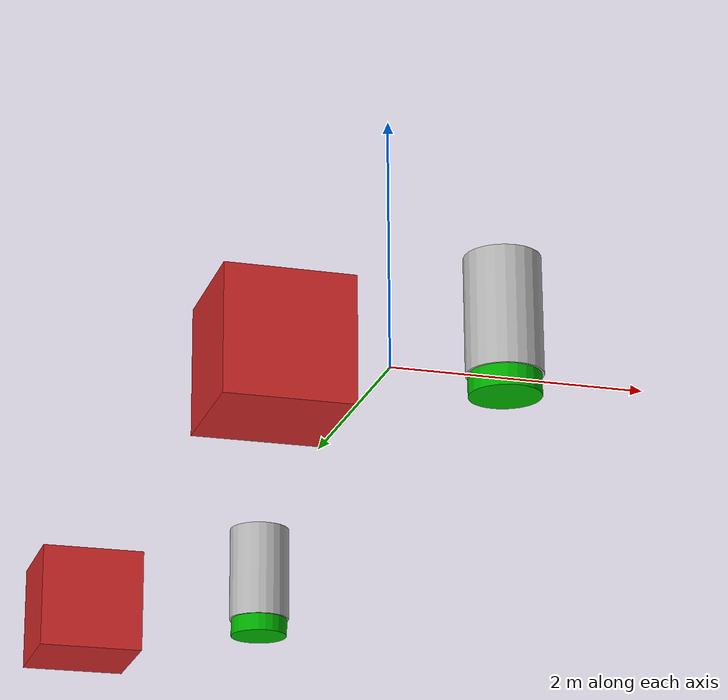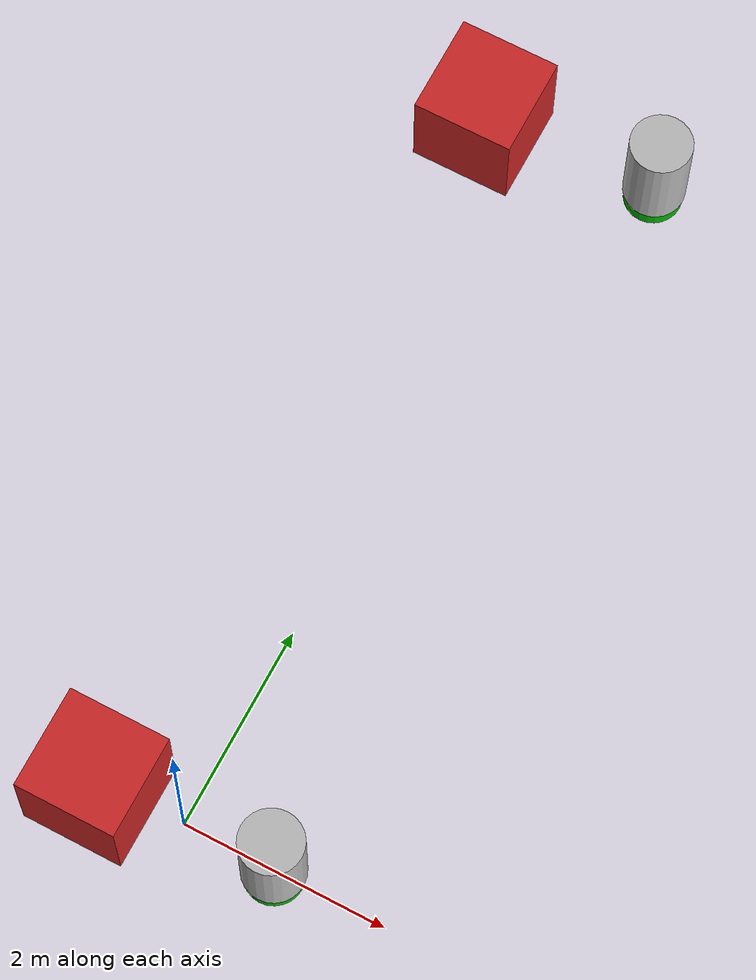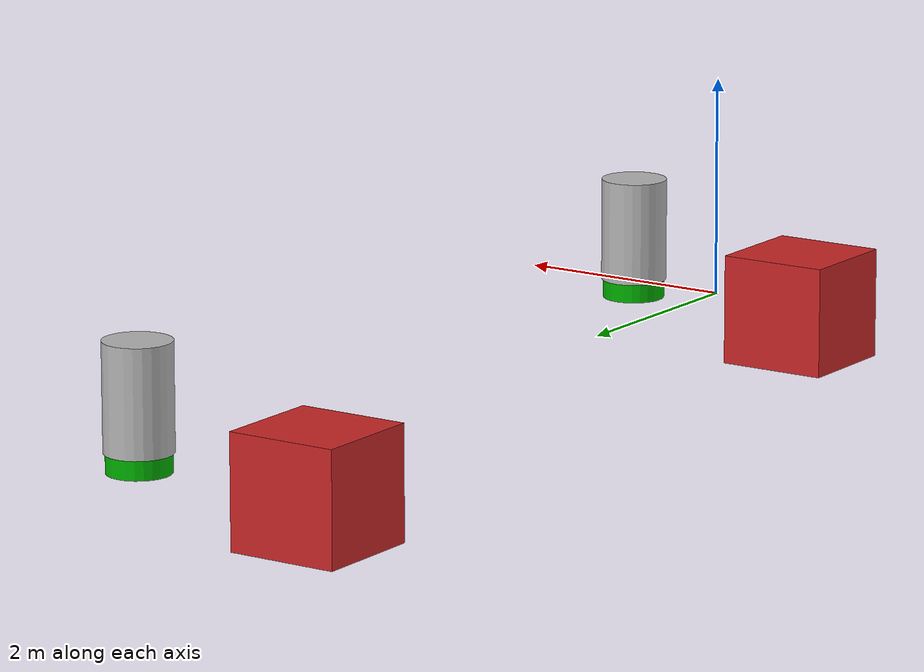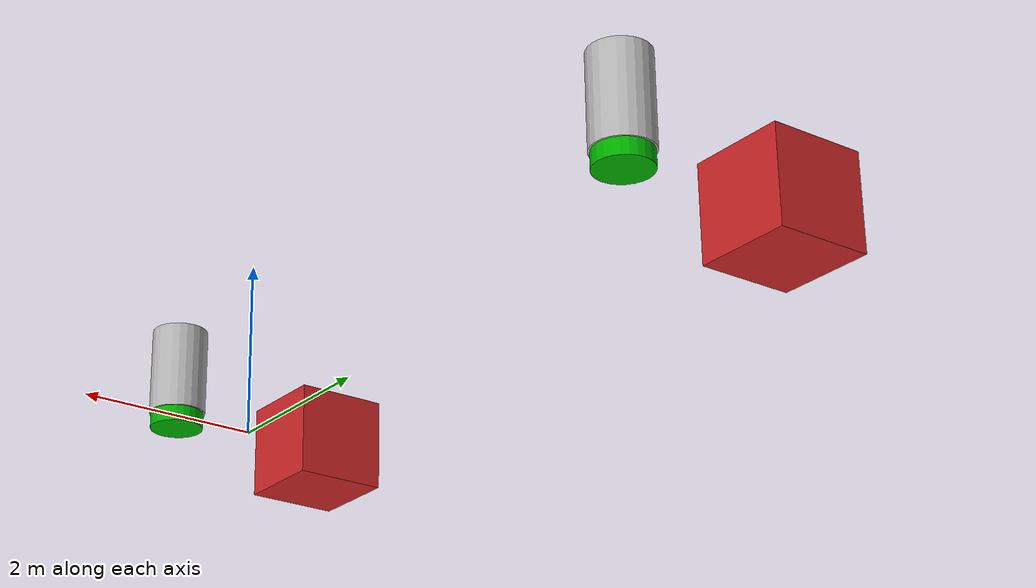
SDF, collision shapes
<?xml version='1.0'?>
<sdf version='1.6'>
  <model name='task1_var1'>
    <include>
      <uri>model://marker_buoy_port</uri>
      <pose>-0.9 0 0 0 0 0</pose>
      <name>Port Marker Buoy (red) #1</name>
    </include>
    <include>
      <uri>model://marker_buoy_starboard</uri>
      <pose>0.9 0 0 0 0 0</pose>
      <name>Starboard Marker Buoy (green) #1</name>
    </include>
    <include>
      <uri>model://marker_buoy_port</uri>
      <pose>-0.9 7.5 0 0 0 0</pose>
      <name>Port Marker Buoy (red) #2</name>
    </include>
    <include>
      <uri>model://marker_buoy_starboard</uri>
      <pose>0.9 7.5 0 0 0 0</pose>
      <name>Starboard Marker Buoy (green) #2</name>
    </include>
  </model>
</sdf>

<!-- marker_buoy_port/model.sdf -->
<sdf version="1.6">
  <model name="Red Marker">
    <static>true</static>
    <link name="robot_link">
      <collision name="body_collision">
        <geometry>
          <box>
            <size>1 1 1</size>
          </box>
        </geometry>
      </collision>
      <visual name="wheel1_visual">
        <pose>0 0 -0.1 1.57 0 0</pose>
        <geometry>
          <mesh>
            <uri>model://marker_buoy_port/meshes/sur-Mark_marker.stl</uri>
            <scale>0.001 0.001 0.001</scale>
          </mesh>
        </geometry>
        <material>
          <script>
              <uri>file://media/materials/scripts/gazebo.material</uri>
              <name>Gazebo/Red</name>
          </script>
        </material>
      </visual>
    </link>
  </model>
</sdf>

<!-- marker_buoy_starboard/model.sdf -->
<sdf version='1.6'>
  <model name='Starboard Marker Buoy (green)'>
    <link name='cylinder'>
      <inertial>
        <mass>0.068793</mass>
        <inertia>
          <ixx>0.00543853</ixx>
          <ixy>0</ixy>
          <ixz>0</ixz>
          <iyy>0.00543853</iyy>
          <iyz>0</iyz>
          <izz>0.0006256</izz>
        </inertia>
        <pose>0 0 0 0 -0 0</pose>
      </inertial>
      <pose>0 0 0.496472 0 -0 0</pose>
      <gravity>1</gravity>
      <self_collide>0</self_collide>
      <kinematic>0</kinematic>
      <enable_wind>0</enable_wind>
      <collision name='collision'>
        <laser_retro>0</laser_retro>
        <max_contacts>10</max_contacts>
        <pose>0 0 0 0 -0 0</pose>
        <geometry>
          <cylinder>
            <radius>0.3</radius>
            <length>0.945576</length>
          </cylinder>
        </geometry>
        <surface>
          <friction>
            <ode>
              <mu>1</mu>
              <mu2>1</mu2>
              <fdir1>0 0 0</fdir1>
              <slip1>0</slip1>
              <slip2>0</slip2>
            </ode>
            <torsional>
              <coefficient>1</coefficient>
              <patch_radius>0</patch_radius>
              <surface_radius>0</surface_radius>
              <use_patch_radius>1</use_patch_radius>
              <ode>
                <slip>0</slip>
              </ode>
            </torsional>
          </friction>
          <bounce>
            <restitution_coefficient>0</restitution_coefficient>
            <threshold>1e+06</threshold>
          </bounce>
          <contact>
            <collide_without_contact>0</collide_without_contact>
            <collide_without_contact_bitmask>1</collide_without_contact_bitmask>
            <collide_bitmask>1</collide_bitmask>
            <ode>
              <soft_cfm>0</soft_cfm>
              <soft_erp>0.2</soft_erp>
              <kp>1e+13</kp>
              <kd>1</kd>
              <max_vel>0.01</max_vel>
              <min_depth>0</min_depth>
            </ode>
            <bullet>
              <split_impulse>1</split_impulse>
              <split_impulse_penetration_threshold>-0.01</split_impulse_penetration_threshold>
              <soft_cfm>0</soft_cfm>
              <soft_erp>0.2</soft_erp>
              <kp>1e+13</kp>
              <kd>1</kd>
            </bullet>
          </contact>
        </surface>
      </collision>
    </link>

    <link name='base'>
      <inertial>
        <mass>0.0961519</mass>
        <inertia>
          <ixx>0.00264433</ixx>
          <ixy>0</ixy>
          <ixz>0</ixz>
          <iyy>0.00264433</iyy>
          <iyz>0</iyz>
          <izz>0.00382696</izz>
        </inertia>
        <pose>0 0 0 0 -0 0</pose>
      </inertial>
      <pose>0 0 0.003528 0 -0 0</pose>
      <gravity>1</gravity>
      <self_collide>0</self_collide>
      <kinematic>0</kinematic>
      <enable_wind>0</enable_wind>
      <visual name="visual">
        <pose>0 0 -0.3 1.57 0 0</pose>
        <geometry>
          <mesh>
            <uri>file://marker_buoy_port/meshes/sur-Mark_marker.stl</uri>
            <scale>0.001 0.001 0.001</scale>
          </mesh>
        </geometry>
        <material>
          <ambient>0.3 0.3 0.3 1</ambient>
          <diffuse>0 0.7 0 1</diffuse>
          <specular>0.01 0.01 0.01 1</specular>
        </material>
      </visual>
      <collision name='collision'>
        <laser_retro>0</laser_retro>
        <max_contacts>10</max_contacts>
        <pose>0 0 0 0 -0 0</pose>
        <geometry>
          <cylinder>
            <radius>0.282139</radius>
            <length>0.302013</length>
          </cylinder>
        </geometry>
        <surface>
          <friction>
            <ode>
              <mu>1</mu>
              <mu2>1</mu2>
              <fdir1>0 0 0</fdir1>
              <slip1>0</slip1>
              <slip2>0</slip2>
            </ode>
            <torsional>
              <coefficient>1</coefficient>
              <patch_radius>0</patch_radius>
              <surface_radius>0</surface_radius>
              <use_patch_radius>1</use_patch_radius>
              <ode>
                <slip>0</slip>
              </ode>
            </torsional>
          </friction>
          <bounce>
            <restitution_coefficient>0</restitution_coefficient>
            <threshold>1e+06</threshold>
          </bounce>
          <contact>
            <collide_without_contact>0</collide_without_contact>
            <collide_without_contact_bitmask>1</collide_without_contact_bitmask>
            <collide_bitmask>1</collide_bitmask>
            <ode>
              <soft_cfm>0</soft_cfm>
              <soft_erp>0.2</soft_erp>
              <kp>1e+13</kp>
              <kd>1</kd>
              <max_vel>0.01</max_vel>
              <min_depth>0</min_depth>
            </ode>
            <bullet>
              <split_impulse>1</split_impulse>
              <split_impulse_penetration_threshold>-0.01</split_impulse_penetration_threshold>
              <soft_cfm>0</soft_cfm>
              <soft_erp>0.2</soft_erp>
              <kp>1e+13</kp>
              <kd>1</kd>
            </bullet>
          </contact>
        </surface>
      </collision>
    </link>
    <joint name = "joint1" type = "fixed">
      <parent>base</parent>
      <child>cylinder</child>
    </joint>
    <static>0</static>
    <allow_auto_disable>1</allow_auto_disable>
    <!-- Hydrodynamics plugin -->
      <plugin
        filename="gz-waves1-hydrodynamics-system"
        name="gz::sim::systems::Hydrodynamics">

        <link_name>cylinder</link_name>

        <hydrodynamics>
            <damping_on>1</damping_on>
            <viscous_drag_on>1</viscous_drag_on>
            <pressure_drag_on>1</pressure_drag_on>

            <!-- Linear and Angular Damping -->
            <cDampL1>1.0E-6</cDampL1>
            <cDampL2>1.0E-6</cDampL2>
            <cDampR1>1.0E-6</cDampR1>
            <cDampR2>1.0E-6</cDampR2>

            <!-- 'Pressure' Drag -->
            <cPDrag1>1.0E+2</cPDrag1>
            <cPDrag2>1.0E+2</cPDrag2>
            <fPDrag>0.4</fPDrag>
            <cSDrag1>1.0E+2</cSDrag1>
            <cSDrag2>1.0E+2</cSDrag2>
            <fSDrag>0.4</fSDrag>
            <vRDrag>1.0</vRDrag>
        </hydrodynamics>

        <!-- Control visibility of markers -->
        <markers>
            <update_rate>10</update_rate>
            <water_patch>0</water_patch>
            <waterline>0</waterline>
            <underwater_surface>0</underwater_surface>
        </markers>
        </plugin>
  </model>

</sdf>
